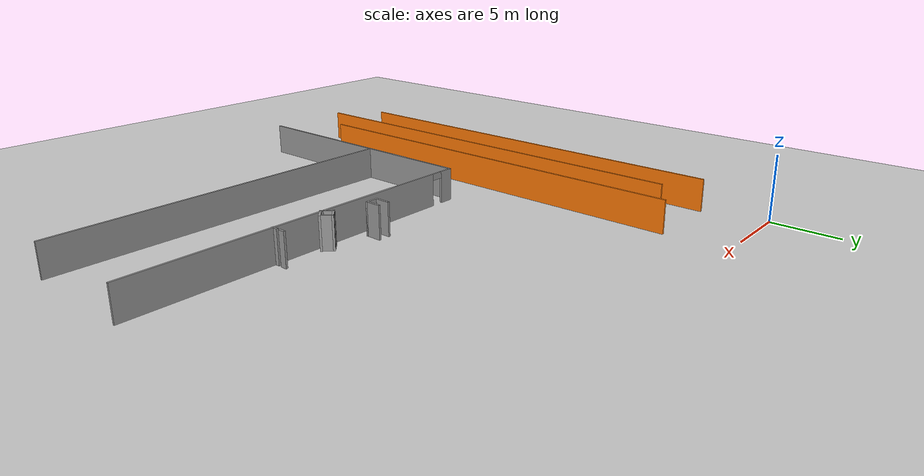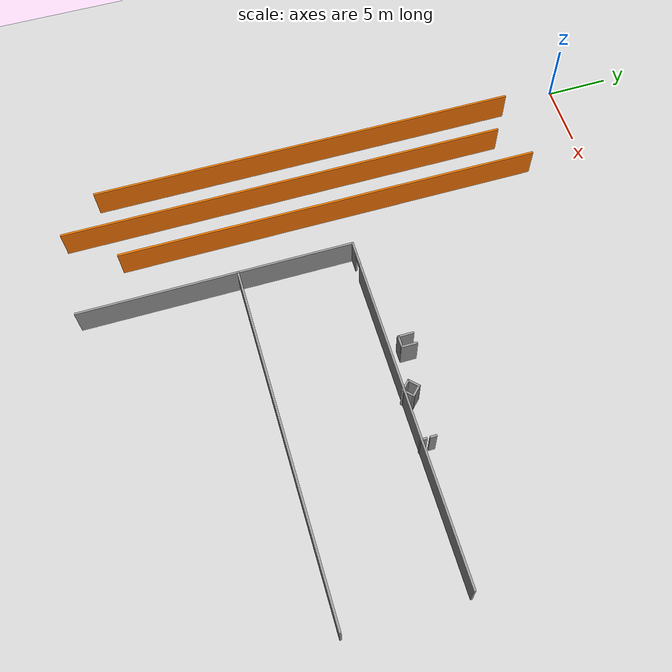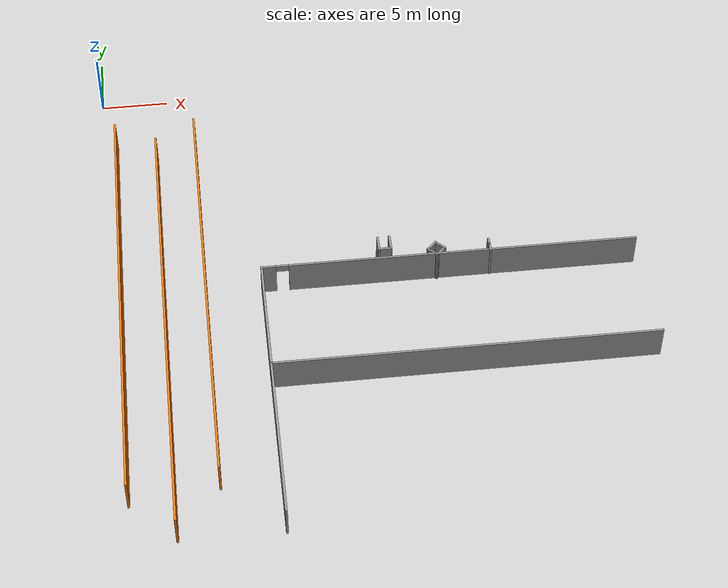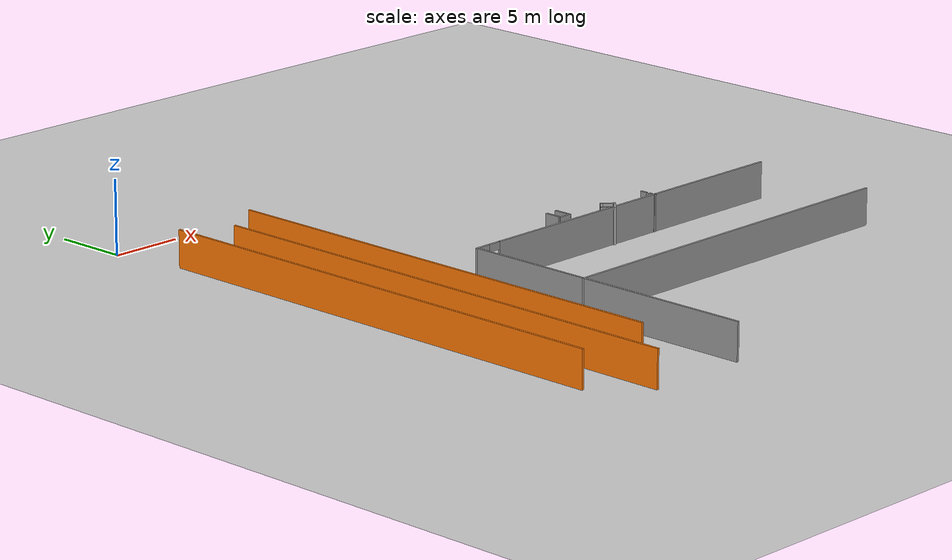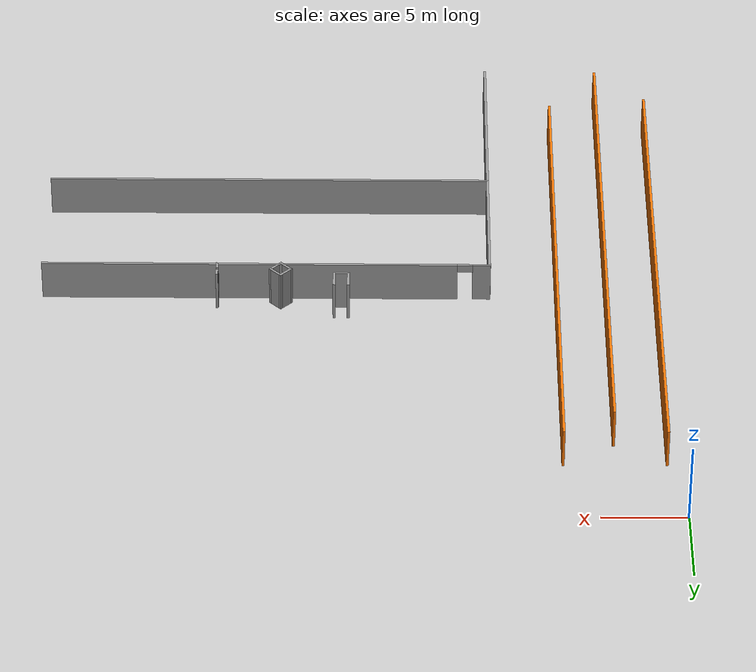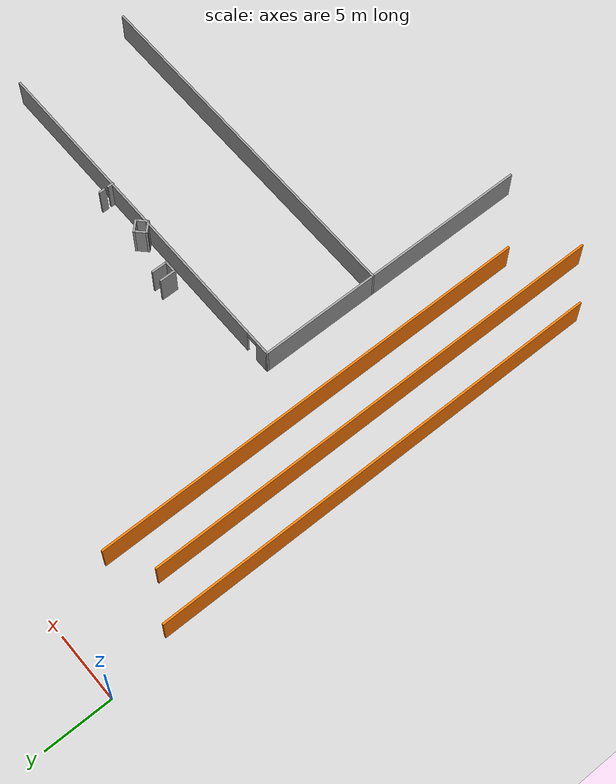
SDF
<sdf version="1.6">
 <world name="default">
  <model name="ground_plane">
   <static>1</static>
   <link name="link">
    <collision name="collision">
     <geometry><plane><normal>0 0 1</normal><size>300 300</size></plane></geometry>
     <surface>
      <contact><collide_bitmask>65535</collide_bitmask></contact>
      <friction><ode><mu>100</mu><mu2>50</mu2></ode></friction>
     </surface>
    </collision>
    <visual name="visual">
     <cast_shadows>0</cast_shadows>
     <geometry><plane><normal>0 0 1</normal><size>300 300</size></plane></geometry>
     <material>
      <script><uri>file://media/materials/scripts/gazebo.material</uri><name>Gazebo/Grey</name></script>
     </material>
    </visual>
   </link>
  </model>
  <model name="NIK">
   <pose>-0.005548 -3.7937 0 0 -0 0</pose>
   <link name="Wall_124">
    <collision name="Wall_124_Collision">
     <geometry><box><size>9 0.15 2.5</size></box></geometry>
     <pose>0 0 1.25 0 -0 0</pose>
    </collision>
    <visual name="Wall_124_Visual">
     <pose>0 0 1.25 0 -0 0</pose>
     <geometry><box><size>9 0.15 2.5</size></box></geometry>
     <material>
      <script><uri>file://media/materials/scripts/gazebo.material</uri><name>Gazebo/Grey</name></script>
      <ambient>1 1 1 1</ambient>
     </material>
     <meta><layer>0</layer></meta>
    </visual>
    <pose>11.0313 -21.4538 0 0 -0 1.5708</pose>
   </link>
   <link name="Wall_125">
    <pose>24.4563 -17.0288 0 0 -0 0</pose>
    <visual name="Wall_125_Visual_0">
     <pose>-12.9494 0 1.25 0 -0 0</pose>
     <geometry><box><size>1.10129 0.15 2.5</size></box></geometry>
     <material>
      <script><uri>file://media/materials/scripts/gazebo.material</uri><name>Gazebo/Grey</name></script>
      <ambient>1 1 1 1</ambient>
     </material>
     <meta><layer>0</layer></meta>
    </visual>
    <collision name="Wall_125_Collision_0">
     <geometry><box><size>1.10129 0.15 2.5</size></box></geometry>
     <pose>-12.9494 0 1.25 0 -0 0</pose>
    </collision>
    <visual name="Wall_125_Visual_1">
     <pose>1.00065 0 1.25 0 -0 0</pose>
     <geometry><box><size>24.9987 0.15 2.5</size></box></geometry>
     <material>
      <script><uri>file://media/materials/scripts/gazebo.material</uri><name>Gazebo/Grey</name></script>
      <ambient>1 1 1 1</ambient>
     </material>
     <meta><layer>0</layer></meta>
    </visual>
    <collision name="Wall_125_Collision_1">
     <geometry><box><size>24.9987 0.15 2.5</size></box></geometry>
     <pose>1.00065 0 1.25 0 -0 0</pose>
    </collision>
    <visual name="Wall_125_Visual_2">
     <pose>-11.9487 0 2.25 0 -0 0</pose>
     <geometry><box><size>0.9 0.15 0.5</size></box></geometry>
     <material>
      <script><uri>file://media/materials/scripts/gazebo.material</uri><name>Gazebo/Grey</name></script>
      <ambient>1 1 1 1</ambient>
     </material>
     <meta><layer>0</layer></meta>
    </visual>
    <collision name="Wall_125_Collision_2">
     <geometry><box><size>0.9 0.15 0.5</size></box></geometry>
     <pose>-11.9487 0 2.25 0 -0 0</pose>
    </collision>
   </link>
   <link name="Wall_134">
    <collision name="Wall_134_Collision">
     <geometry><box><size>34 0.15 2.5</size></box></geometry>
     <pose>0 0 1.25 0 -0 0</pose>
    </collision>
    <visual name="Wall_134_Visual">
     <pose>0 0 1.25 0 -0 0</pose>
     <geometry><box><size>34 0.15 2.5</size></box></geometry>
     <material>
      <script><uri>file://media/materials/scripts/gazebo.material</uri><name>Gazebo/Grey</name></script>
      <ambient>0.996078 0.47451 0.0196078 1</ambient>
     </material>
     <meta><layer>0</layer></meta>
    </visual>
    <pose>1.03455 -17.9523 0 0 -0 -1.5708</pose>
   </link>
   <link name="Wall_136">
    <collision name="Wall_136_Collision">
     <geometry><box><size>35.25 0.15 2.5</size></box></geometry>
     <pose>0 0 1.25 0 -0 0</pose>
    </collision>
    <visual name="Wall_136_Visual">
     <pose>0 0 1.25 0 -0 0</pose>
     <geometry><box><size>35.25 0.15 2.5</size></box></geometry>
     <material>
      <script><uri>file://media/materials/scripts/gazebo.material</uri><name>Gazebo/Grey</name></script>
      <ambient>0.996078 0.47451 0.0196078 1</ambient>
     </material>
     <meta><layer>0</layer></meta>
    </visual>
    <pose>4.05455 -20.3743 0 0 -0 1.5708</pose>
   </link>
   <link name="Wall_138">
    <collision name="Wall_138_Collision">
     <geometry><box><size>33.25 0.15 2.5</size></box></geometry>
     <pose>0 0 1.25 0 -0 0</pose>
    </collision>
    <visual name="Wall_138_Visual">
     <pose>0 0 1.25 0 -0 0</pose>
     <geometry><box><size>33.25 0.15 2.5</size></box></geometry>
     <material>
      <script><uri>file://media/materials/scripts/gazebo.material</uri><name>Gazebo/Grey</name></script>
      <ambient>0.996078 0.47451 0.0196078 1</ambient>
     </material>
     <meta><layer>0</layer></meta>
    </visual>
    <pose>7.01455 -17.5493 0 0 -0 -1.5708</pose>
   </link>
   <link name="Wall_23">
    <collision name="Wall_23_Collision">
     <geometry><box><size>27 0.15 2.5</size></box></geometry>
     <pose>0 0 1.25 0 -0 0</pose>
    </collision>
    <visual name="Wall_23_Visual">
     <pose>0 0 1.25 0 -0 0</pose>
     <geometry><box><size>27 0.15 2.5</size></box></geometry>
     <material>
      <script><uri>file://media/materials/scripts/gazebo.material</uri><name>Gazebo/Grey</name></script>
      <ambient>1 1 1 1</ambient>
     </material>
     <meta><layer>0</layer></meta>
    </visual>
    <pose>24.4563 -25.8788 0 0 -0 3.14159</pose>
   </link>
   <link name="Wall_25">
    <collision name="Wall_25_Collision">
     <geometry><box><size>12.25 0.15 2.5</size></box></geometry>
     <pose>0 0 1.25 0 -0 0</pose>
    </collision>
    <visual name="Wall_25_Visual">
     <pose>0 0 1.25 0 -0 0</pose>
     <geometry><box><size>12.25 0.15 2.5</size></box></geometry>
     <material>
      <script><uri>file://media/materials/scripts/gazebo.material</uri><name>Gazebo/Grey</name></script>
      <ambient>1 1 1 1</ambient>
     </material>
     <meta><layer>0</layer></meta>
    </visual>
    <pose>11.0313 -31.9288 0 0 -0 -1.5708</pose>
   </link>
   <link name="Wall_288">
    <collision name="Wall_288_Collision">
     <geometry><box><size>1.25 0.15 2.5</size></box></geometry>
     <pose>0 0 1.25 0 -0 0</pose>
    </collision>
    <visual name="Wall_288_Visual">
     <pose>0 0 1.25 0 -0 0</pose>
     <geometry><box><size>1.25 0.15 2.5</size></box></geometry>
     <material>
      <script><uri>file://media/materials/scripts/gazebo.material</uri><name>Gazebo/Grey</name></script>
      <ambient>1 1 1 1</ambient>
     </material>
     <meta><layer>0</layer></meta>
    </visual>
    <pose>19.5024 -15.602 0 0 -0 -1.5708</pose>
   </link>
   <link name="Wall_289">
    <collision name="Wall_289_Collision">
     <geometry><box><size>1 0.15 2.5</size></box></geometry>
     <pose>0 0 1.25 0 -0 0</pose>
    </collision>
    <visual name="Wall_289_Visual">
     <pose>0 0 1.25 0 -0 0</pose>
     <geometry><box><size>1 0.15 2.5</size></box></geometry>
     <material>
      <script><uri>file://media/materials/scripts/gazebo.material</uri><name>Gazebo/Grey</name></script>
      <ambient>1 1 1 1</ambient>
     </material>
     <meta><layer>0</layer></meta>
    </visual>
    <pose>19.9274 -16.152 0 0 -0 0</pose>
   </link>
   <link name="Wall_290">
    <collision name="Wall_290_Collision">
     <geometry><box><size>1.25 0.15 2.5</size></box></geometry>
     <pose>0 0 1.25 0 -0 0</pose>
    </collision>
    <visual name="Wall_290_Visual">
     <pose>0 0 1.25 0 -0 0</pose>
     <geometry><box><size>1.25 0.15 2.5</size></box></geometry>
     <material>
      <script><uri>file://media/materials/scripts/gazebo.material</uri><name>Gazebo/Grey</name></script>
      <ambient>1 1 1 1</ambient>
     </material>
     <meta><layer>0</layer></meta>
    </visual>
    <pose>20.3524 -15.602 0 0 -0 1.5708</pose>
   </link>
   <link name="Wall_400">
    <collision name="Wall_400_Collision">
     <geometry><box><size>0.5 0.15 2.5</size></box></geometry>
     <pose>0 0 1.25 0 -0 0</pose>
    </collision>
    <visual name="Wall_400_Visual">
     <pose>0 0 1.25 0 -0 0</pose>
     <geometry><box><size>0.5 0.15 2.5</size></box></geometry>
     <material>
      <script><uri>file://media/materials/scripts/gazebo.material</uri><name>Gazebo/Grey</name></script>
      <ambient>1 1 1 1</ambient>
     </material>
     <meta><layer>0</layer></meta>
    </visual>
    <pose>27.3863 -16.8906 0 0 -0 -1.5708</pose>
   </link>
   <link name="Wall_403">
    <collision name="Wall_403_Collision">
     <geometry><box><size>0.5 0.15 2.5</size></box></geometry>
     <pose>0 0 1.25 0 -0 0</pose>
    </collision>
    <visual name="Wall_403_Visual">
     <pose>0 0 1.25 0 -0 0</pose>
     <geometry><box><size>0.5 0.15 2.5</size></box></geometry>
     <material>
      <script><uri>file://media/materials/scripts/gazebo.material</uri><name>Gazebo/Grey</name></script>
      <ambient>1 1 1 1</ambient>
     </material>
     <meta><layer>0</layer></meta>
    </visual>
    <pose>27.3863 -16.1906 0 0 -0 1.5708</pose>
   </link>
   <link name="Wall_461">
    <collision name="Wall_461_Collision">
     <geometry><box><size>1 0.15 2.5</size></box></geometry>
     <pose>0 0 1.25 0 -0 0</pose>
    </collision>
    <visual name="Wall_461_Visual">
     <pose>0 0 1.25 0 -0 0</pose>
     <geometry><box><size>1 0.15 2.5</size></box></geometry>
     <material>
      <script><uri>file://media/materials/scripts/gazebo.material</uri><name>Gazebo/Grey</name></script>
      <ambient>1 1 1 1</ambient>
     </material>
     <meta><layer>0</layer></meta>
    </visual>
    <pose>23.8617 -16.2339 0 0 -0 -0.785398</pose>
   </link>
   <link name="Wall_462">
    <collision name="Wall_462_Collision">
     <geometry><box><size>1 0.15 2.5</size></box></geometry>
     <pose>0 0 1.25 0 -0 0</pose>
    </collision>
    <visual name="Wall_462_Visual">
     <pose>0 0 1.25 0 -0 0</pose>
     <geometry><box><size>1 0.15 2.5</size></box></geometry>
     <material>
      <script><uri>file://media/materials/scripts/gazebo.material</uri><name>Gazebo/Grey</name></script>
      <ambient>1 1 1 1</ambient>
     </material>
     <meta><layer>0</layer></meta>
    </visual>
    <pose>23.8617 -16.8349 0 0 -0 -2.35619</pose>
   </link>
   <link name="Wall_473">
    <collision name="Wall_473_Collision">
     <geometry><box><size>1 0.15 2.5</size></box></geometry>
     <pose>0 0 1.25 0 -0 0</pose>
    </collision>
    <visual name="Wall_473_Visual">
     <pose>0 0 1.25 0 -0 0</pose>
     <geometry><box><size>1 0.15 2.5</size></box></geometry>
     <material>
      <script><uri>file://media/materials/scripts/gazebo.material</uri><name>Gazebo/Grey</name></script>
      <ambient>1 1 1 1</ambient>
     </material>
     <meta><layer>0</layer></meta>
    </visual>
    <pose>23.2607 -16.2339 0 0 -0 -2.35619</pose>
   </link>
   <link name="Wall_474">
    <collision name="Wall_474_Collision">
     <geometry><box><size>1 0.15 2.5</size></box></geometry>
     <pose>0 0 1.25 0 -0 0</pose>
    </collision>
    <visual name="Wall_474_Visual">
     <pose>0 0 1.25 0 -0 0</pose>
     <geometry><box><size>1 0.15 2.5</size></box></geometry>
     <material>
      <script><uri>file://media/materials/scripts/gazebo.material</uri><name>Gazebo/Grey</name></script>
      <ambient>1 1 1 1</ambient>
     </material>
     <meta><layer>0</layer></meta>
    </visual>
    <pose>23.2607 -16.8349 0 0 -0 -0.785398</pose>
   </link>
   <static>1</static>
  </model>
 </world>
</sdf>
